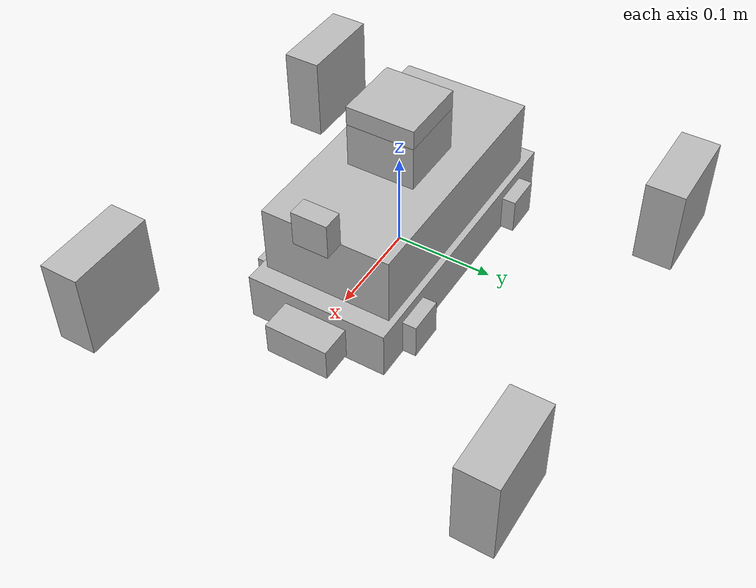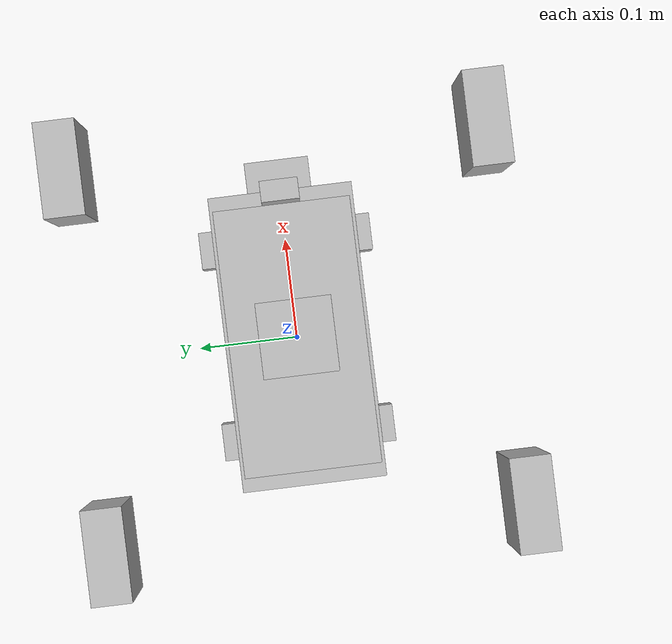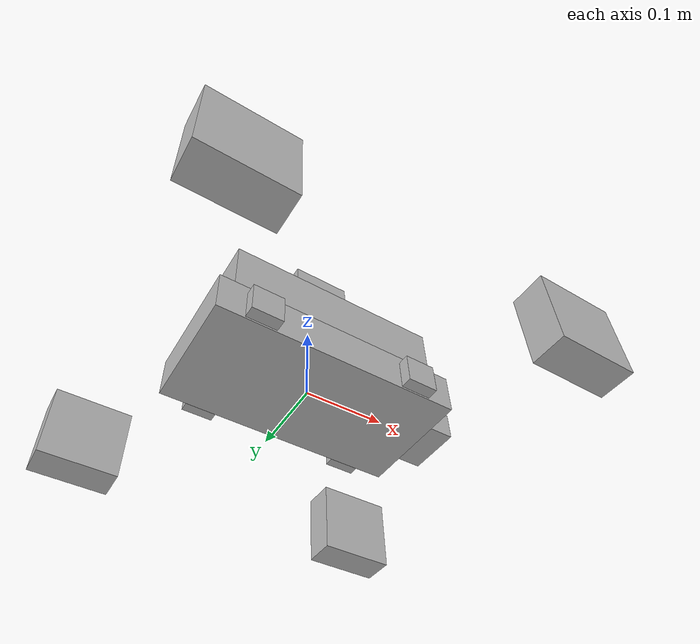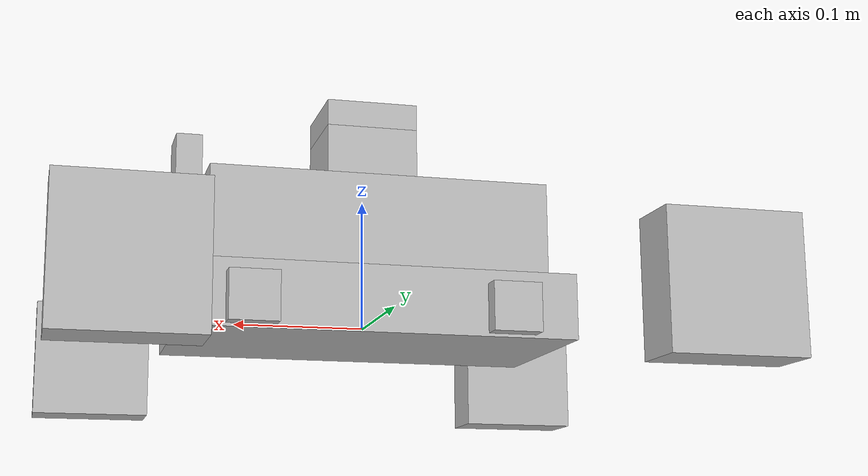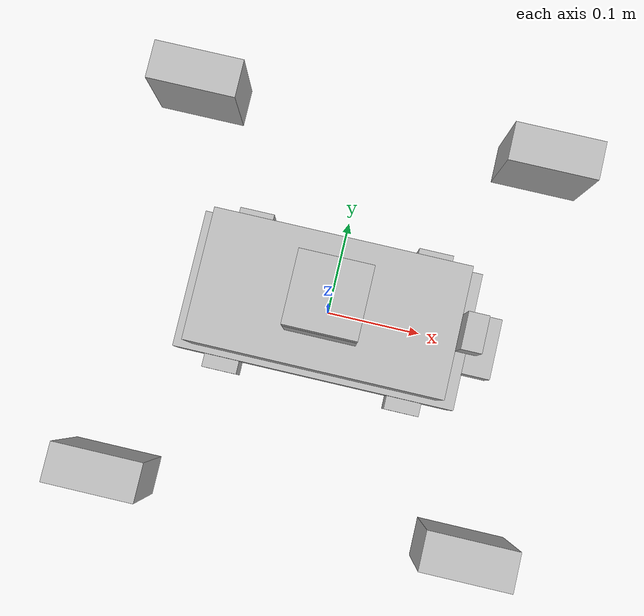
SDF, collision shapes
<?xml version="1.0" ?>
<sdf version="1.11">
  <model name="omniseer">
    <link name="base_link">
      <inertial>
        <mass>0.0001</mass>
        <inertia>
          <ixx>1e-09</ixx>
          <ixy>0</ixy>
          <ixz>0</ixz>
          <iyy>1e-09</iyy>
          <iyz>0</iyz>
          <izz>1e-09</izz>
        </inertia>
      </inertial>
    </link>
    <link name="fl_wheel_1">
      <pose relative_to="__model__">0.09760000179931552 0.10761705076677833 8.938861234365387e-06 -1.4216528736923893e-29 3.1554436208840444e-30 -1.2281842209915656e-15</pose>
      <inertial>
        <mass>0.1449437592188408</mass>
        <inertia>
          <ixx>0.0001065427220107956</ixx>
          <ixy>0.0</ixy>
          <ixz>4.7460314825842516e-20</ixz>
          <iyy>0.00017047197881125617</iyy>
          <iyz>5.190723779892759e-20</iyz>
          <izz>0.00010654272201080081</izz>
        </inertia>
      </inertial>
      <visual name="fl_wheel_1__body1_visual">
        <geometry>
          <mesh>
            <scale>0.01 0.01 0.01</scale>
            <uri>meshes/fl_wheel_1/body1_visual.obj</uri>
          </mesh>
        </geometry>
      </visual>
      <collision name="fl_wheel_1__body1_collision">
        <pose relative_to="__model__">0.09760000179931533 0.10761705076677833 8.937736196799052e-06 -0.0 -1.5707963267948966 0</pose>
        <geometry>
          <box>
            <size>0.09699999999999999 0.041999999999999996 0.09699999999999999</size>
          </box>
        </geometry>
      </collision>
    </link>
    <link name="bl_wheel_1">
      <pose relative_to="__model__">-0.09710000179931515 0.10761705076677833 8.938861234365387e-06 -1.4216528736923893e-29 3.1554436208840444e-30 -1.2281842209915656e-15</pose>
      <inertial>
        <mass>0.1449437592188408</mass>
        <inertia>
          <ixx>0.0001065427220107956</ixx>
          <ixy>2.168404344971009e-19</ixy>
          <ixz>4.743384504624082e-20</ixz>
          <iyy>0.00017047197881125617</iyy>
          <iyz>5.190723779892759e-20</iyz>
          <izz>0.00010654272201080037</izz>
        </inertia>
      </inertial>
      <visual name="bl_wheel_1__body1_visual">
        <geometry>
          <mesh>
            <scale>0.01 0.01 0.01</scale>
            <uri>meshes/bl_wheel_1/body1_visual.obj</uri>
          </mesh>
        </geometry>
      </visual>
      <collision name="bl_wheel_1__body1_collision">
        <pose relative_to="__model__">-0.09710000179931534 0.10761705076677833 8.937736196799052e-06 -0.0 -1.5707963267948966 0</pose>
        <geometry>
          <box>
            <size>0.09699999999999999 0.041999999999999996 0.09699999999999999</size>
          </box>
        </geometry>
      </collision>
    </link>
    <link name="fr_wheel_1">
      <pose relative_to="__model__">0.09760000179931558 -0.10761705076677823 8.938861234365387e-06 -1.4216528736923893e-29 3.1554436208840444e-30 -1.2281842209915656e-15</pose>
      <inertial>
        <mass>0.1449437592188408</mass>
        <inertia>
          <ixx>0.0001065427220107956</ixx>
          <ixy>0.0</ixy>
          <ixz>4.7460314825842516e-20</ixz>
          <iyy>0.00017047197881125617</iyy>
          <iyz>5.1880768019325896e-20</iyz>
          <izz>0.00010654272201079994</izz>
        </inertia>
      </inertial>
      <visual name="fr_wheel_1__body1_visual">
        <geometry>
          <mesh>
            <scale>0.01 0.01 0.01</scale>
            <uri>meshes/fr_wheel_1/body1_visual.obj</uri>
          </mesh>
        </geometry>
      </visual>
      <collision name="fr_wheel_1__body1_collision">
        <pose relative_to="__model__">0.09760000179931538 -0.10761705076677823 8.937736196799052e-06 -0.0 -1.5707963267948966 0</pose>
        <geometry>
          <box>
            <size>0.09699999999999999 0.041999999999999996 0.09699999999999999</size>
          </box>
        </geometry>
      </collision>
    </link>
    <link name="br_wheel_1">
      <pose relative_to="__model__">-0.09710000179931509 -0.10761705076677823 8.938861234365387e-06 -1.4216528736923893e-29 3.1554436208840444e-30 -1.2281842209915656e-15</pose>
      <inertial>
        <mass>0.1449437592188408</mass>
        <inertia>
          <ixx>0.0001065427220107956</ixx>
          <ixy>0.0</ixy>
          <ixz>4.7460314825842516e-20</ixz>
          <iyy>0.00017047197881125617</iyy>
          <iyz>5.1880768019325896e-20</iyz>
          <izz>0.00010654272201079994</izz>
        </inertia>
      </inertial>
      <visual name="br_wheel_1__body1_visual">
        <geometry>
          <mesh>
            <scale>0.01 0.01 0.01</scale>
            <uri>meshes/br_wheel_1/body1_visual.obj</uri>
          </mesh>
        </geometry>
      </visual>
      <collision name="br_wheel_1__body1_collision">
        <pose relative_to="__model__">-0.09710000179931529 -0.10761705076677823 8.937736196799052e-06 -0.0 -1.5707963267948966 0</pose>
        <geometry>
          <box>
            <size>0.09699999999999999 0.041999999999999996 0.09699999999999999</size>
          </box>
        </geometry>
      </collision>
    </link>
    <link name="chassis_1">
      <inertial>
        <pose>0.015255860402233874 0.00044882299423251547 0.05333371024181444 0.0 -0.0 0.0</pose>
        <mass>5.320840769031529</mass>
        <inertia>
          <ixx>0.02446073029164947</ixx>
          <ixy>3.555570989810459e-05</ixy>
          <ixz>0.0026756715987900814</ixz>
          <iyy>0.051291345440382746</iyy>
          <iyz>0.00014378429529634938</iyz>
          <izz>0.042444773249914435</izz>
        </inertia>
      </inertial>
      <visual name="chassis_1__body_visual">
        <geometry>
          <mesh>
            <scale>0.01 0.01 0.01</scale>
            <uri>meshes/chassis_1/body_visual.obj</uri>
          </mesh>
        </geometry>
      </visual>
      <visual name="chassis_1__powerbank_visual">
        <geometry>
          <mesh>
            <scale>0.01 0.01 0.01</scale>
            <uri>meshes/chassis_1/powerbank_visual.obj</uri>
          </mesh>
        </geometry>
      </visual>
      <visual name="chassis_1__battery_visual">
        <geometry>
          <mesh>
            <scale>0.01 0.01 0.01</scale>
            <uri>meshes/chassis_1/battery_visual.obj</uri>
          </mesh>
        </geometry>
      </visual>
      <visual name="chassis_1__bl_motor_visual">
        <geometry>
          <mesh>
            <scale>0.01 0.01 0.01</scale>
            <uri>meshes/chassis_1/bl_motor_visual.obj</uri>
          </mesh>
        </geometry>
      </visual>
      <visual name="chassis_1__br_motor_visual">
        <geometry>
          <mesh>
            <scale>0.01 0.01 0.01</scale>
            <uri>meshes/chassis_1/br_motor_visual.obj</uri>
          </mesh>
        </geometry>
      </visual>
      <visual name="chassis_1__fl_motor_visual">
        <geometry>
          <mesh>
            <scale>0.01 0.01 0.01</scale>
            <uri>meshes/chassis_1/fl_motor_visual.obj</uri>
          </mesh>
        </geometry>
      </visual>
      <visual name="chassis_1__fr_motor_visual">
        <geometry>
          <mesh>
            <scale>0.01 0.01 0.01</scale>
            <uri>meshes/chassis_1/fr_motor_visual.obj</uri>
          </mesh>
        </geometry>
      </visual>
      <visual name="chassis_1__hs_visual">
        <geometry>
          <mesh>
            <scale>0.01 0.01 0.01</scale>
            <uri>meshes/chassis_1/hs_visual.obj</uri>
          </mesh>
        </geometry>
      </visual>
      <visual name="chassis_1__imu_visual">
        <geometry>
          <mesh>
            <scale>0.01 0.01 0.01</scale>
            <uri>meshes/chassis_1/imu_visual.obj</uri>
          </mesh>
        </geometry>
      </visual>
      <visual name="chassis_1__upper_plate_visual">
        <geometry>
          <mesh>
            <scale>0.01 0.01 0.01</scale>
            <uri>meshes/chassis_1/upper_plate_visual.obj</uri>
          </mesh>
        </geometry>
      </visual>
      <visual name="chassis_1__camera_visual">
        <geometry>
          <mesh>
            <scale>0.01 0.01 0.01</scale>
            <uri>meshes/chassis_1/camera_visual.obj</uri>
          </mesh>
        </geometry>
      </visual>
      <visual name="chassis_1__lidar_body_visual">
        <geometry>
          <mesh>
            <scale>0.01 0.01 0.01</scale>
            <uri>meshes/chassis_1/lidar_body_visual.obj</uri>
          </mesh>
        </geometry>
      </visual>
      <collision name="chassis_1__body_collision">
        <pose relative_to="__model__">0.0 0.0 0.011096708873493042 -0.0 -1.5707963267948966 0</pose>
        <geometry>
          <box>
            <size>0.05 0.14500000688713044 0.2969975141066243</size>
          </box>
        </geometry>
      </collision>
      <collision name="chassis_1__powerbank_collision">
        <pose relative_to="__model__">0.0004999982006848214 -0.030382949210869984 0.0033422814465520513 -0.0 -1.5707963267948966 0</pose>
        <geometry>
          <box>
            <size>0.029000000000000005 0.071 0.11000000000000001</size>
          </box>
        </geometry>
      </collision>
      <collision name="chassis_1__battery_collision">
        <pose relative_to="__model__">0.000499998200684928 0.03961705078913 0.001342281446551261 -0.0 -1.5707963267948966 0</pose>
        <geometry>
          <box>
            <size>0.025 0.045 0.135</size>
          </box>
        </geometry>
      </collision>
      <collision name="chassis_1__bl_motor_collision">
        <pose relative_to="__model__">-0.09710000179931542 0.050017050766778225 0.0070089377361969765 -0.0 -1.5707963267948966 0</pose>
        <geometry>
          <box>
            <size>0.037000000000000005 0.07320000000000014 0.03699999999999999</size>
          </box>
        </geometry>
      </collision>
      <collision name="chassis_1__br_motor_collision">
        <pose relative_to="__model__">-0.09710000179931542 -0.050017050766778225 0.0070089377361969765 -0.0 -1.5707963267948966 0</pose>
        <geometry>
          <box>
            <size>0.037000000000000005 0.07320000000000014 0.03699999999999999</size>
          </box>
        </geometry>
      </collision>
      <collision name="chassis_1__fl_motor_collision">
        <pose relative_to="__model__">0.09760000179931541 0.050017050766778225 0.0070089377361969765 -0.0 -1.5707963267948966 0</pose>
        <geometry>
          <box>
            <size>0.037000000000000005 0.07320000000000014 0.03699999999999999</size>
          </box>
        </geometry>
      </collision>
      <collision name="chassis_1__fr_motor_collision">
        <pose relative_to="__model__">0.09760000179931541 -0.050017050766778225 0.0070089377361969765 -0.0 -1.5707963267948966 0</pose>
        <geometry>
          <box>
            <size>0.037000000000000005 0.07320000000000014 0.03699999999999999</size>
          </box>
        </geometry>
      </collision>
      <collision name="chassis_1__hs_collision">
        <pose relative_to="__model__">0.16424875705331196 -4.473035630434552e-06 0.00630893883889007 -0.0 -1.5707963267948966 0</pose>
        <geometry>
          <box>
            <size>0.03400000000000001 0.06475 0.032500000000000036</size>
          </box>
        </geometry>
      </collision>
      <collision name="chassis_1__imu_collision">
        <pose relative_to="__model__">0.010000000000000002 8.881784197001253e-18 0.04284670887349312 -0.0 -1.5707963267948966 0</pose>
        <geometry>
          <box>
            <size>0.013499999999999996 0.026499999999999985 0.020000000000000004</size>
          </box>
        </geometry>
      </collision>
      <collision name="chassis_1__upper_plate_collision">
        <pose relative_to="__model__">-7.105427357601002e-16 9.237055564881303e-16 0.07109670887349191 -0.0 -1.5707963267948966 0</pose>
        <geometry>
          <box>
            <size>0.0699999999999978 0.132 0.257</size>
          </box>
        </geometry>
      </collision>
      <collision name="chassis_1__camera_collision">
        <pose relative_to="__model__">0.1384999999999989 1.0369483049998962e-15 0.12409670887349437 -0.0 -1.5707963267948966 0</pose>
        <geometry>
          <box>
            <size>0.03600000000000001 0.036000000536441805 0.020000000000000177</size>
          </box>
        </geometry>
      </collision>
      <collision name="chassis_1__lidar_body_collision">
        <pose relative_to="__model__">-5.3734794391857575e-16 5.151434834260726e-16 0.12909670887349262 -0.0 -1.5707963267948966 0</pose>
        <geometry>
          <box>
            <size>0.04600000000000001 0.07 0.07</size>
          </box>
        </geometry>
      </collision>
    </link>
    <link name="lidar_top_1">
      <inertial>
        <pose>-2.954093418429609e-17 9.748508280817712e-16 0.16209670887349303 0.0 -0.0 0.0</pose>
        <mass>0.6042068071016563</mass>
        <inertia>
          <ixx>0.0002051785615782703</ixx>
          <ixy>9.281393431592714e-18</ixy>
          <ixz>1.2566166227386013e-18</ixz>
          <iyy>0.0002051785615782599</iyy>
          <iyz>4.224665266698078e-18</iyz>
          <izz>0.000370076669349746</izz>
        </inertia>
      </inertial>
      <visual name="lidar_top_1__body1_visual">
        <geometry>
          <mesh>
            <scale>0.01 0.01 0.01</scale>
            <uri>meshes/lidar_top_1/body1_visual.obj</uri>
          </mesh>
        </geometry>
      </visual>
      <collision name="lidar_top_1__body1_collision">
        <pose relative_to="__model__">-7.727152251391089e-16 7.416289804496045e-16 0.16209670887349262 -0.0 -1.5707963267948966 0</pose>
        <geometry>
          <box>
            <size>0.019999999999999983 0.07 0.07</size>
          </box>
        </geometry>
      </collision>
    </link>
    <joint name="revolute_16" type="continuous">
      <pose relative_to="__model__">-0.09710000179931534 -0.08661705076677828 8.937736196800161e-06 0.0 -0.0 0.0</pose>
      <parent>chassis_1</parent>
      <child>br_wheel_1</child>
      <axis>
        <xyz expressed_in="__model__">1.2698175844150216e-15 -1.0 -1.1018963519404669e-14</xyz>
      </axis>
    </joint>
    <joint name="revolute_17" type="continuous">
      <pose relative_to="__model__">0.09760000179931533 -0.08661705076677828 8.937736196800161e-06 0.0 -0.0 0.0</pose>
      <parent>chassis_1</parent>
      <child>fr_wheel_1</child>
      <axis>
        <xyz expressed_in="__model__">-1.2698175844150216e-15 -1.0 -1.1018963519404669e-14</xyz>
      </axis>
    </joint>
    <joint name="revolute_18" type="continuous">
      <pose relative_to="__model__">-0.09710000179931534 0.08661705076677828 8.937736196800161e-06 0.0 -0.0 0.0</pose>
      <parent>chassis_1</parent>
      <child>bl_wheel_1</child>
      <axis>
        <xyz expressed_in="__model__">1.2698175844150216e-15 1.0 -1.1018963519404669e-14</xyz>
      </axis>
    </joint>
    <joint name="revolute_19" type="continuous">
      <pose relative_to="__model__">0.09760000179931533 0.08661705076677828 8.937736196800161e-06 0.0 -0.0 0.0</pose>
      <parent>chassis_1</parent>
      <child>fl_wheel_1</child>
      <axis>
        <xyz expressed_in="__model__">-1.2698175844150216e-15 1.0 -1.1018963519404669e-14</xyz>
      </axis>
    </joint>
    <joint name="revolute_22" type="continuous">
      <pose relative_to="__model__">-5.3734794391857575e-16 5.151434834260726e-16 0.15209670887349305 0.0 -0.0 0.0</pose>
      <parent>chassis_1</parent>
      <child>lidar_top_1</child>
      <axis>
        <xyz expressed_in="__model__">-1.1679893163751825e-14 1.1241008124329724e-14 1.0</xyz>
      </axis>
    </joint>
    <joint name="base_link_joint" type="fixed">
      <parent>base_link</parent>
      <child>chassis_1</child>
      <axis/>
    </joint>
  </model>
</sdf>
